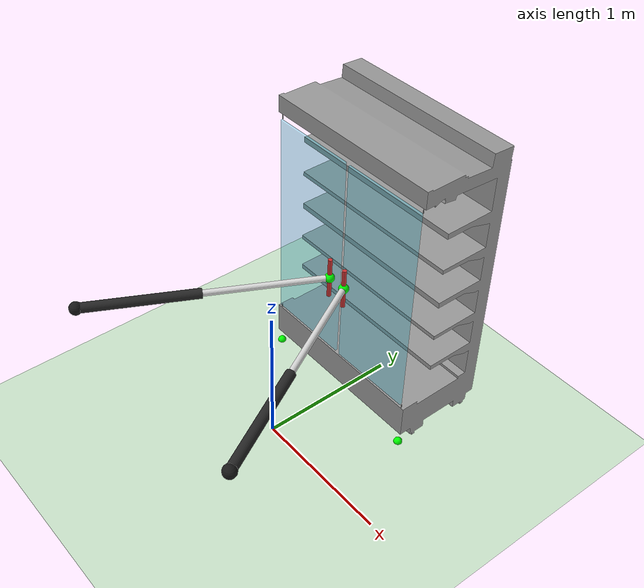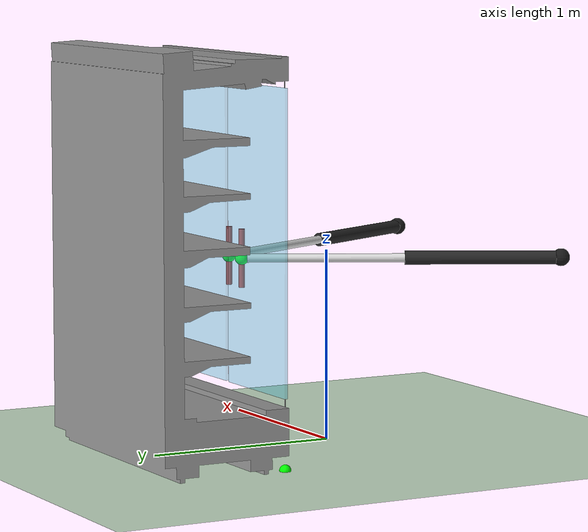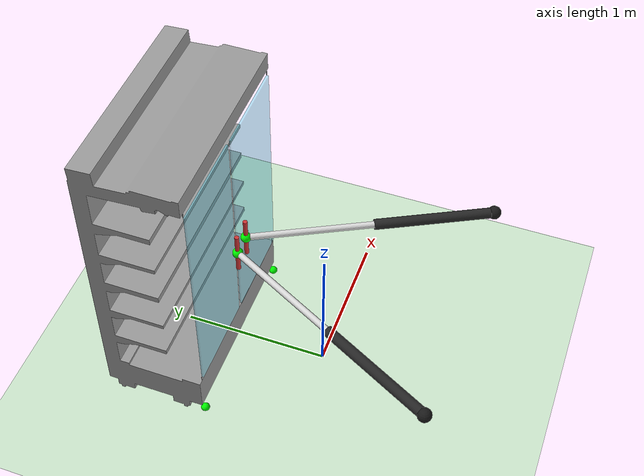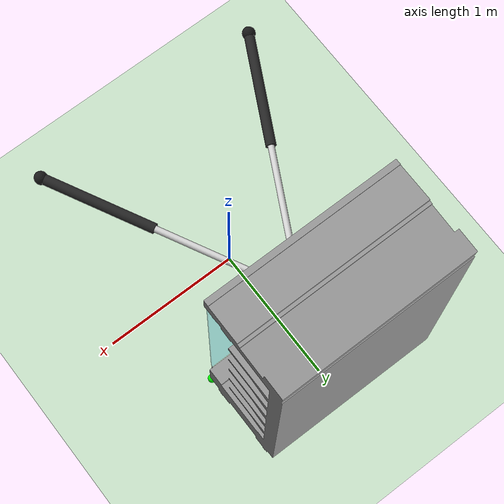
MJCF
<mujoco model="Test_osaka_3p_pneumatic_cylinders">

  <option timestep="0.002" gravity="0 0 -9.81"/>
  <compiler angle="radian"/>

  <asset>
    <!-- Frigo -->
    <mesh name="frigo_mesh" file="Osaka_3p_corpo.obj"/>
    <mesh name="porta_sx_mesh" file="Osaka_3p_portasx.obj"/>
    <mesh name="porta_dx_mesh" file="Osaka_3p_portadx.obj"/>
  </asset>

  <worldbody>
    <geom name="pavimento" type="plane" size="5 5 0.1" rgba="0.8 0.9 0.8 1"/>
    <light directional="true" diffuse="0.8 0.8 0.8" specular="0.2 0.2 0.2" pos="0 0 5" dir="0 0 -1" castshadow="false"/>

    <!-- Pneumatico porta sinistra -->
    <body name="supporto_pneumatico_sx" pos="-0.85 -0.90 1.00">
        <geom name="supporto_base_sx" type="sphere" size="0.045" rgba="0.1 0.1 0.1 1" contype="0" conaffinity="0"/>
        <site name="snodo_fisso_cilindro_sx" pos="0 0 0" size="0.035" rgba="1 0 0 1"/>

        <body name="canna_cilindro_sx" pos="0 0 0" zaxis="0.460 0.888 0">
            <joint name="snodo_base_cilindro_sx" type="ball" damping="0.05"/>
            <inertial pos="0 0 0.40" mass="1.5" diaginertia="0.035 0.035 0.006"/>
            <geom name="canna_visual_sx" type="cylinder" pos="0 0 0.40" size="0.035 0.40" rgba="0.15 0.15 0.15 1" contype="0" conaffinity="0"/>

            <body name="stelo_cilindro_sx" pos="0 0 0">
            <joint name="corsa_cilindro_sx" type="slide" axis="0 0 -1" range="0 0.57" limited="true" damping="20" frictionloss="5"/>
            <inertial pos="0 0 1.20" mass="0.8" diaginertia="0.018 0.018 0.003"/>
            <geom name="stelo_visual_sx" type="cylinder" pos="0 0 1.20" size="0.022 0.43" rgba="0.85 0.85 0.85 1" contype="0" conaffinity="0"/>
            <site name="punta_stelo_sx" pos="0 0 1.632" size="0.035" rgba="0 1 0 1"/>
            <geom name="snodo_mobile_visual_sx" type="sphere" pos="0 0 1.632" size="0.035" rgba="0 1 0 1" contype="0" conaffinity="0"/>
            </body>
        </body>
    </body>

    <!-- Pneumatico porta destra -->
    <body name="supporto_pneumatico_dx" pos="0.80 -0.90 1.00">
        <geom name="supporto_base_dx" type="sphere" size="0.045" rgba="0.1 0.1 0.1 1" contype="0" conaffinity="0"/>
        <site name="snodo_fisso_cilindro_dx" pos="0 0 0" size="0.035" rgba="1 0 0 1"/>

        <body name="canna_cilindro_dx" pos="0 0 0" zaxis="-0.464 0.886 0">
            <joint name="snodo_base_cilindro_dx" type="ball" damping="0.05"/>
            <inertial pos="0 0 0.40" mass="1.5" diaginertia="0.035 0.035 0.006"/>
            <geom name="canna_visual_dx" type="cylinder" pos="0 0 0.40" size="0.035 0.40" rgba="0.15 0.15 0.15 1" contype="0" conaffinity="0"/>

            <body name="stelo_cilindro_dx" pos="0 0 0">
            <joint name="corsa_cilindro_dx" type="slide" axis="0 0 -1" range="0 0.57" limited="true" damping="20" frictionloss="5"/>
            <inertial pos="0 0 1.20" mass="0.8" diaginertia="0.018 0.018 0.003"/>
            <geom name="stelo_visual_dx" type="cylinder" pos="0 0 1.20" size="0.022 0.43" rgba="0.85 0.85 0.85 1" contype="0" conaffinity="0"/>
            <site name="punta_stelo_dx" pos="0 0 1.637" size="0.035" rgba="0 1 0 1"/>
            <geom name="snodo_mobile_visual_dx" type="sphere" pos="0 0 1.637" size="0.035" rgba="0 1 0 1" contype="0" conaffinity="0"/>
            </body>
        </body>
    </body>

    <!-- Banco frigo Osaka 3p -->
    <body name="banco_frigo" pos="-0.7 0.6 0">
      <geom type="mesh" mesh="frigo_mesh" rgba="0.6 0.6 0.6 1" contype="0" conaffinity="0"/>

      <body name="porta_sx" pos="0 0 0">
        <joint name="giunto_porta_sx" type="hinge" pos="0.04 0 0" axis="0 0 1" range="-1.6581 0" limited="true" damping="5" frictionloss="5.28"/>
        <inertial pos="0.35 0.0 1.1" mass="12.0" diaginertia="2.512 2.884 0.372"/>
        <geom type="mesh" mesh="porta_sx_mesh" rgba="0.3 0.8 0.9 0.4" contype="1" conaffinity="1"/>
        <site name="debug_cernierasx" pos="0.04 0 0" size="0.03" rgba="0 1 0 1"/>

        <body name="maniglia_sx" pos="0.60 -0.05 1.0">
          <inertial pos="0 0 0" mass="0.2" diaginertia="0.001 0.001 0.001"/>
          <geom name="manigliasx" type="cylinder" size="0.015 0.15" rgba="0.8 0.2 0.2 1" contype="0" conaffinity="0"/>
          <site name="target_manigliasx" pos="0 0 0" size="0.02" rgba="1 0 0 0.5"/>
        </body>
      </body>

      <body name="porta_dx" pos="0 0 0">
        <joint name="giunto_porta_dx" type="hinge" pos="1.305 0 0" axis="0 0 1" range="0 1.6581" limited="true" damping="5" frictionloss="5.28"/>
        <inertial pos="1.0 0.0 1.1" mass="12.0" diaginertia="2.512 2.884 0.372"/>
        <geom type="mesh" mesh="porta_dx_mesh" rgba="0.3 0.8 0.9 0.4" contype="1" conaffinity="1"/>
        <site name="debug_cernieradx" pos="1.305 0 0" size="0.03" rgba="0 1 0 1"/>

        <body name="maniglia_dx" pos="0.74 -0.05 1.0">
          <inertial pos="0 0 0" mass="0.2" diaginertia="0.001 0.001 0.001"/>
          <geom name="manigliadx" type="cylinder" size="0.015 0.15" rgba="0.8 0.2 0.2 1" contype="0" conaffinity="0"/>
          <site name="target_manigliadx" pos="0 0 0" size="0.02" rgba="1 0 0 0.5"/>
        </body>
      </body>
    </body>
  </worldbody>

  <equality>
    <connect name="snodo_stelo_maniglia_sx" site1="punta_stelo_sx" site2="target_manigliasx" solimp="0.9 0.95 0.001" solref="0.02 1"/>
    <connect name="snodo_stelo_maniglia_dx" site1="punta_stelo_dx" site2="target_manigliadx" solimp="0.9 0.95 0.001" solref="0.02 1"/>
  </equality>

  <actuator>
    <motor name="forza_pneumatica_sx" joint="corsa_cilindro_sx" gear="1" ctrllimited="true" ctrlrange="-100 100"/>
    <motor name="forza_pneumatica_dx" joint="corsa_cilindro_dx" gear="1" ctrllimited="true" ctrlrange="-100 100"/>
  </actuator>
</mujoco>
